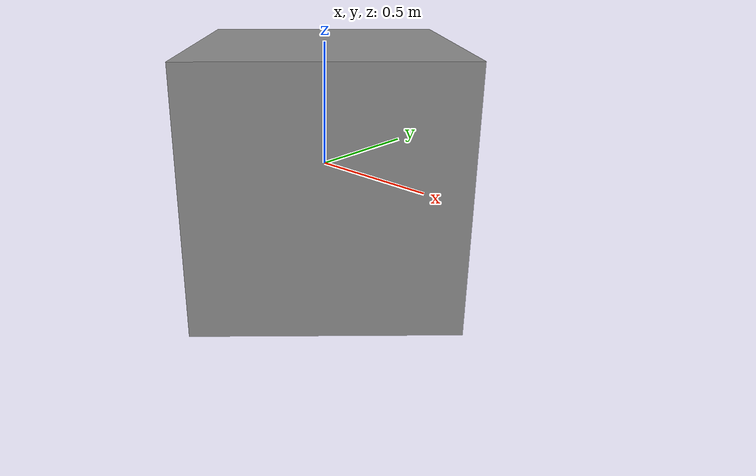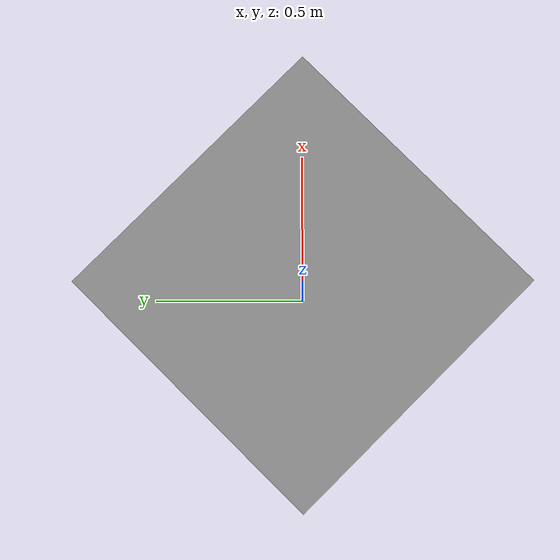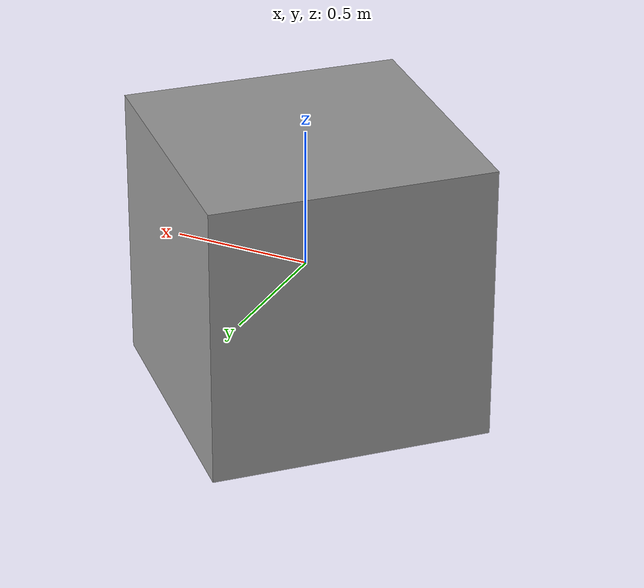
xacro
<?xml version="1.0"?>
<robot name="robot" xmlns:xacro="http://www.ros.org/wiki/xacro">
  <xacro:arg name="b" default="1"/>
  <xacro:arg name="h" default="1"/>
  <xacro:arg name="l" default="1"/>
  <xacro:arg name="color" default="Gray"/>

  <xacro:include filename="$(find mobile_manipulator)/world/urdf/box.xacro"/>

  <link name="world"/>

  <xacro:spawn_box box_name="box_0" b="$(arg b)" l="$(arg l)" h="$(arg h)" xyz="0 0 0" color="$(arg color)"/>

  <gazebo> <static>true</static></gazebo>
</robot>

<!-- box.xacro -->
<robot name="robot" xmlns:xacro="http://www.ros.org/wiki/xacro">
  <xacro:macro name="spawn_box" params="box_name:='box_0' b:='1' l:='1' h:='1' xyz:='0 0 0' rpy:='0 0 0.785' color:='White'">
  <link name="${box_name}">
    <inertial>
      <origin xyz="0 0 0" rpy="0 0 0"/>
      <mass value="1"/>
      <inertia ixx="1" ixy="0" ixz="0" iyy="1" iyz="0" izz="1"/>
    </inertial>
    <visual>
      <origin xyz="0 0 0" rpy="0 0 0"/>
      <geometry>
        <box size="${b} ${l} ${h}" />
      </geometry>
      <material name="Gray" />
    </visual>
    <collision>
      <origin xyz="0 0 0" rpy="0 0 0"/>
      <geometry>
        <box size="${b} ${l} ${h}" />
      </geometry>
    </collision>
  </link>
  <joint name="world_${box_name}_joint" type="fixed">
    <origin xyz="${xyz}" rpy="${rpy}"/>
    <parent link="world"/>
    <child link="${box_name}"/>
  </joint>
  <gazebo reference="${box_name}">
    <material>Gazebo/${color}</material>
  </gazebo>
</xacro:macro>
</robot>
